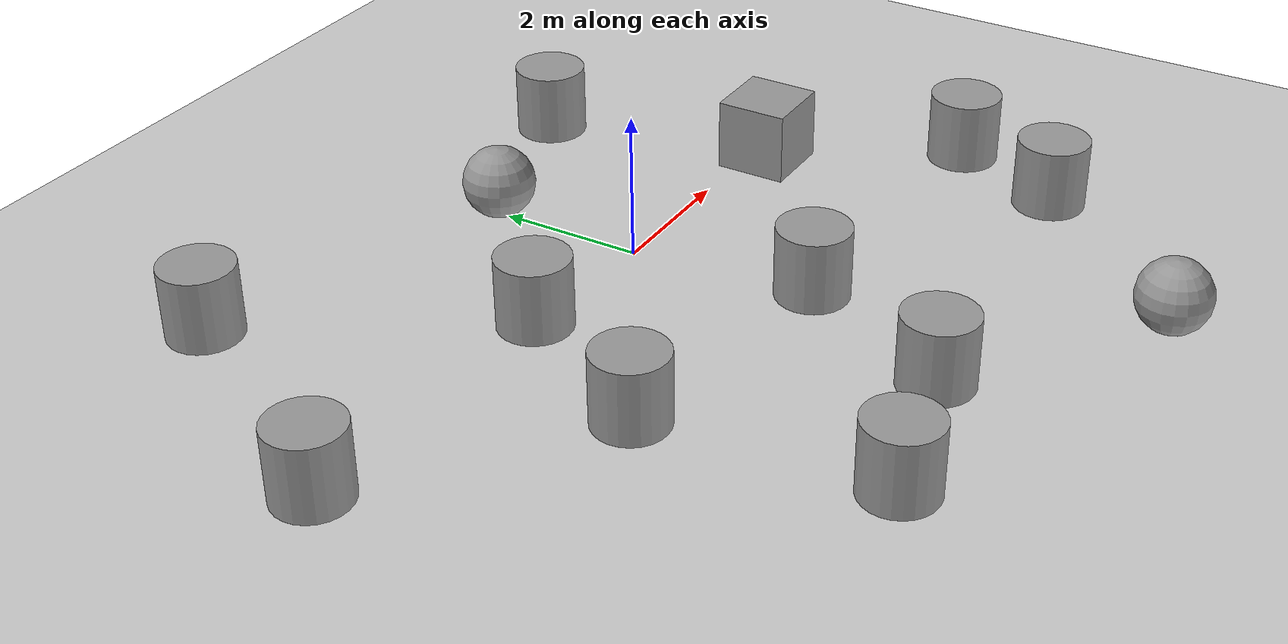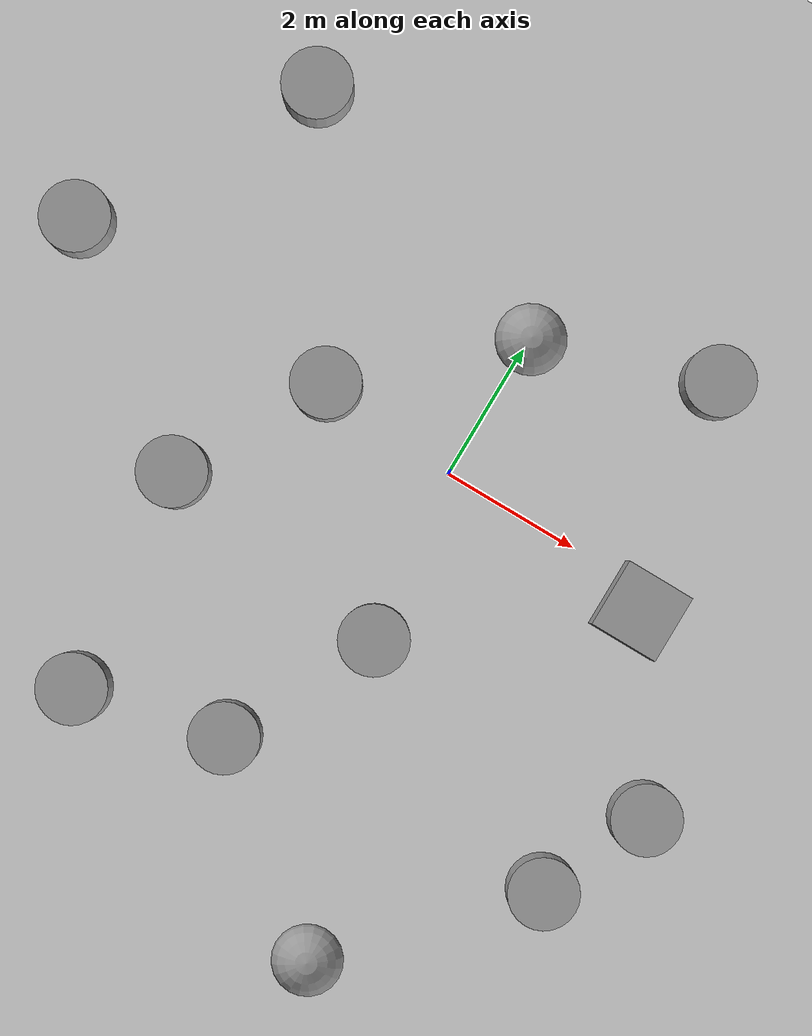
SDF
<sdf version="1.7">
 <world name="default">
  <light name="sun" type="directional">
   <pose>0 0 10 0 -0 0</pose>
   <diffuse>0.8 0.8 0.8 1</diffuse>
   <specular>0.2 0.2 0.2 1</specular>
   <attenuation>
    <range>1000</range>
    <constant>0.9</constant>
    <linear>0.01</linear>
    <quadratic>0.001</quadratic>
   </attenuation>
   <direction>-0.5 0.1 -0.9</direction>
   <spot><inner_angle>0</inner_angle><outer_angle>0</outer_angle><falloff>0</falloff></spot>
  </light>
  <model name="ground_plane">
   <static>1</static>
   <link name="link">
    <collision name="collision">
     <geometry><plane><normal>0 0 1</normal><size>100 100</size></plane></geometry>
     <surface>
      <contact><collide_bitmask>65535</collide_bitmask></contact>
      <friction><ode><mu>100</mu><mu2>50</mu2></ode></friction>
     </surface>
    </collision>
    <visual name="visual">
     <cast_shadows>0</cast_shadows>
     <geometry><plane><normal>0 0 1</normal><size>100 100</size></plane></geometry>
     <material>
      <script><uri>file://media/materials/scripts/gazebo.material</uri><name>Gazebo/Grey</name></script>
     </material>
    </visual>
   </link>
  </model>
  <gravity>0 0 -9.8</gravity>
  <magnetic_field>6e-06 2.3e-05 -4.2e-05</magnetic_field>
  <atmosphere type="adiabatic"/>
  <physics type="ode">
   <max_step_size>0.001</max_step_size>
   <real_time_factor>1</real_time_factor>
   <real_time_update_rate>1000</real_time_update_rate>
  </physics>
  <scene><ambient>0.4 0.4 0.4 1</ambient><background>0.7 0.7 0.7 1</background><shadows>1</shadows></scene>
  <spherical_coordinates>
   <surface_model>EARTH_WGS84</surface_model>
   <latitude_deg>0</latitude_deg>
   <longitude_deg>0</longitude_deg>
   <elevation>0</elevation>
   <heading_deg>0</heading_deg>
  </spherical_coordinates>
  <model name="unit_cylinder">
   <pose>-3.24506 -1.94629 0.499992 -3e-06 3e-06 0</pose>
   <link name="link">
    <inertial>
     <mass>1</mass>
     <inertia><ixx>0.145833</ixx><ixy>0</ixy><ixz>0</ixz><iyy>0.145833</iyy><iyz>0</iyz><izz>0.125</izz></inertia>
    </inertial>
    <collision name="collision">
     <geometry><cylinder><radius>0.5</radius><length>1</length></cylinder></geometry>
    </collision>
    <visual name="visual">
     <geometry><cylinder><radius>0.5</radius><length>1</length></cylinder></geometry>
     <material>
      <script><name>Gazebo/Grey</name><uri>file://media/materials/scripts/gazebo.material</uri></script>
     </material>
    </visual>
   </link>
  </model>
  <model name="unit_cylinder_0">
   <pose>0.293649 -2.49944 0.499998 3e-06 -3e-06 0</pose>
   <link name="link">
    <inertial>
     <mass>1</mass>
     <inertia><ixx>0.145833</ixx><ixy>0</ixy><ixz>0</ixz><iyy>0.145833</iyy><iyz>0</iyz><izz>0.125</izz></inertia>
    </inertial>
    <collision name="collision">
     <geometry><cylinder><radius>0.5</radius><length>1</length></cylinder></geometry>
    </collision>
    <visual name="visual">
     <geometry><cylinder><radius>0.5</radius><length>1</length></cylinder></geometry>
     <material>
      <script><name>Gazebo/Grey</name><uri>file://media/materials/scripts/gazebo.material</uri></script>
     </material>
    </visual>
   </link>
  </model>
  <model name="unit_cylinder_1">
   <pose>-2.88917 -5.17835 0.499992 -3e-06 3e-06 0</pose>
   <link name="link">
    <inertial>
     <mass>1</mass>
     <inertia><ixx>0.145833</ixx><ixy>0</ixy><ixz>0</ixz><iyy>0.145833</iyy><iyz>0</iyz><izz>0.125</izz></inertia>
    </inertial>
    <collision name="collision">
     <geometry><cylinder><radius>0.5</radius><length>1</length></cylinder></geometry>
    </collision>
    <visual name="visual">
     <geometry><cylinder><radius>0.5</radius><length>1</length></cylinder></geometry>
     <material>
      <script><name>Gazebo/Grey</name><uri>file://media/materials/scripts/gazebo.material</uri></script>
     </material>
    </visual>
   </link>
  </model>
  <model name="unit_cylinder_2">
   <pose>-4.2776 3.60488 0.499998 3e-06 -3e-06 0</pose>
   <link name="link">
    <inertial>
     <mass>1</mass>
     <inertia><ixx>0.145833</ixx><ixy>0</ixy><ixz>0</ixz><iyy>0.145833</iyy><iyz>0</iyz><izz>0.125</izz></inertia>
    </inertial>
    <collision name="collision">
     <geometry><cylinder><radius>0.5</radius><length>1</length></cylinder></geometry>
    </collision>
    <visual name="visual">
     <geometry><cylinder><radius>0.5</radius><length>1</length></cylinder></geometry>
     <material>
      <script><name>Gazebo/Grey</name><uri>file://media/materials/scripts/gazebo.material</uri></script>
     </material>
    </visual>
   </link>
  </model>
  <model name="unit_box">
   <pose>3.21565 -0.279578 0.499995 0 1e-05 0</pose>
   <link name="link">
    <inertial>
     <mass>1</mass>
     <inertia>
      <ixx>0.166667</ixx>
      <ixy>0</ixy>
      <ixz>0</ixz>
      <iyy>0.166667</iyy>
      <iyz>0</iyz>
      <izz>0.166667</izz>
     </inertia>
    </inertial>
    <collision name="collision"><geometry><box><size>1 1 1</size></box></geometry></collision>
    <visual name="visual">
     <geometry><box><size>1 1 1</size></box></geometry>
     <material>
      <script><name>Gazebo/Grey</name><uri>file://media/materials/scripts/gazebo.material</uri></script>
     </material>
    </visual>
   </link>
  </model>
  <model name="unit_cylinder_3">
   <pose>-0.769128 -4.68659 0.499998 3e-06 -4e-06 0</pose>
   <link name="link">
    <inertial>
     <mass>1</mass>
     <inertia><ixx>0.145833</ixx><ixy>0</ixy><ixz>0</ixz><iyy>0.145833</iyy><iyz>0</iyz><izz>0.125</izz></inertia>
    </inertial>
    <collision name="collision">
     <geometry><cylinder><radius>0.5</radius><length>1</length></cylinder></geometry>
    </collision>
    <visual name="visual">
     <geometry><cylinder><radius>0.5</radius><length>1</length></cylinder></geometry>
     <material>
      <script><name>Gazebo/Grey</name><uri>file://media/materials/scripts/gazebo.material</uri></script>
     </material>
    </visual>
   </link>
  </model>
  <model name="unit_cylinder_4">
   <pose>4.04295 -4.26088 0.499992 -3e-06 4e-06 0</pose>
   <link name="link">
    <inertial>
     <mass>1</mass>
     <inertia><ixx>0.145833</ixx><ixy>0</ixy><ixz>0</ixz><iyy>0.145833</iyy><iyz>0</iyz><izz>0.125</izz></inertia>
    </inertial>
    <collision name="collision">
     <geometry><cylinder><radius>0.5</radius><length>1</length></cylinder></geometry>
    </collision>
    <visual name="visual">
     <geometry><cylinder><radius>0.5</radius><length>1</length></cylinder></geometry>
     <material>
      <script><name>Gazebo/Grey</name><uri>file://media/materials/scripts/gazebo.material</uri></script>
     </material>
    </visual>
   </link>
  </model>
  <model name="unit_sphere">
   <pose>1.76878 -6.73004 0.5 0 -0 0</pose>
   <link name="link">
    <inertial>
     <mass>1</mass>
     <inertia><ixx>0.1</ixx><ixy>0</ixy><ixz>0</ixz><iyy>0.1</iyy><iyz>0</iyz><izz>0.1</izz></inertia>
    </inertial>
    <collision name="collision"><geometry><sphere><radius>0.5</radius></sphere></geometry></collision>
    <visual name="visual">
     <geometry><sphere><radius>0.5</radius></sphere></geometry>
     <material>
      <script><name>Gazebo/Grey</name><uri>file://media/materials/scripts/gazebo.material</uri></script>
     </material>
    </visual>
   </link>
  </model>
  <model name="unit_sphere_0">
   <pose>0.01607 2.1423 0.5 0 -0 0</pose>
   <link name="link">
    <inertial>
     <mass>1</mass>
     <inertia><ixx>0.1</ixx><ixy>0</ixy><ixz>0</ixz><iyy>0.1</iyy><iyz>0</iyz><izz>0.1</izz></inertia>
    </inertial>
    <collision name="collision"><geometry><sphere><radius>0.5</radius></sphere></geometry></collision>
    <visual name="visual">
     <geometry><sphere><radius>0.5</radius></sphere></geometry>
     <material>
      <script><name>Gazebo/Grey</name><uri>file://media/materials/scripts/gazebo.material</uri></script>
     </material>
    </visual>
   </link>
  </model>
  <model name="unit_cylinder_5">
   <pose>-2.07309 0.168039 0.499993 -3e-06 -3e-06 -0</pose>
   <link name="link">
    <inertial>
     <mass>1</mass>
     <inertia><ixx>0.145833</ixx><ixy>0</ixy><ixz>0</ixz><iyy>0.145833</iyy><iyz>0</iyz><izz>0.125</izz></inertia>
    </inertial>
    <collision name="collision">
     <geometry><cylinder><radius>0.5</radius><length>1</length></cylinder></geometry>
    </collision>
    <visual name="visual">
     <geometry><cylinder><radius>0.5</radius><length>1</length></cylinder></geometry>
     <material>
      <script><name>Gazebo/Grey</name><uri>file://media/materials/scripts/gazebo.material</uri></script>
     </material>
    </visual>
   </link>
  </model>
  <model name="unit_cylinder_6">
   <pose>4.72803 -2.68254 0.499997 3e-06 4e-06 -0</pose>
   <link name="link">
    <inertial>
     <mass>1</mass>
     <inertia><ixx>0.145833</ixx><ixy>0</ixy><ixz>0</ixz><iyy>0.145833</iyy><iyz>0</iyz><izz>0.125</izz></inertia>
    </inertial>
    <collision name="collision">
     <geometry><cylinder><radius>0.5</radius><length>1</length></cylinder></geometry>
    </collision>
    <visual name="visual">
     <geometry><cylinder><radius>0.5</radius><length>1</length></cylinder></geometry>
     <material>
      <script><name>Gazebo/Grey</name><uri>file://media/materials/scripts/gazebo.material</uri></script>
     </material>
    </visual>
   </link>
  </model>
  <model name="unit_cylinder_7">
   <pose>2.51954 2.95287 0.499993 -3e-06 -4e-06 -0</pose>
   <link name="link">
    <inertial>
     <mass>1</mass>
     <inertia><ixx>0.145833</ixx><ixy>0</ixy><ixz>0</ixz><iyy>0.145833</iyy><iyz>0</iyz><izz>0.125</izz></inertia>
    </inertial>
    <collision name="collision">
     <geometry><cylinder><radius>0.5</radius><length>1</length></cylinder></geometry>
    </collision>
    <visual name="visual">
     <geometry><cylinder><radius>0.5</radius><length>1</length></cylinder></geometry>
     <material>
      <script><name>Gazebo/Grey</name><uri>file://media/materials/scripts/gazebo.material</uri></script>
     </material>
    </visual>
   </link>
  </model>
  <model name="unit_cylinder_8">
   <pose>-6.16983 0.35238 0.499997 3e-06 4e-06 -0</pose>
   <link name="link">
    <inertial>
     <mass>1</mass>
     <inertia><ixx>0.145833</ixx><ixy>0</ixy><ixz>0</ixz><iyy>0.145833</iyy><iyz>0</iyz><izz>0.125</izz></inertia>
    </inertial>
    <collision name="collision">
     <geometry><cylinder><radius>0.5</radius><length>1</length></cylinder></geometry>
    </collision>
    <visual name="visual">
     <geometry><cylinder><radius>0.5</radius><length>1</length></cylinder></geometry>
     <material>
      <script><name>Gazebo/Grey</name><uri>file://media/materials/scripts/gazebo.material</uri></script>
     </material>
    </visual>
   </link>
  </model>
 </world>
</sdf>
